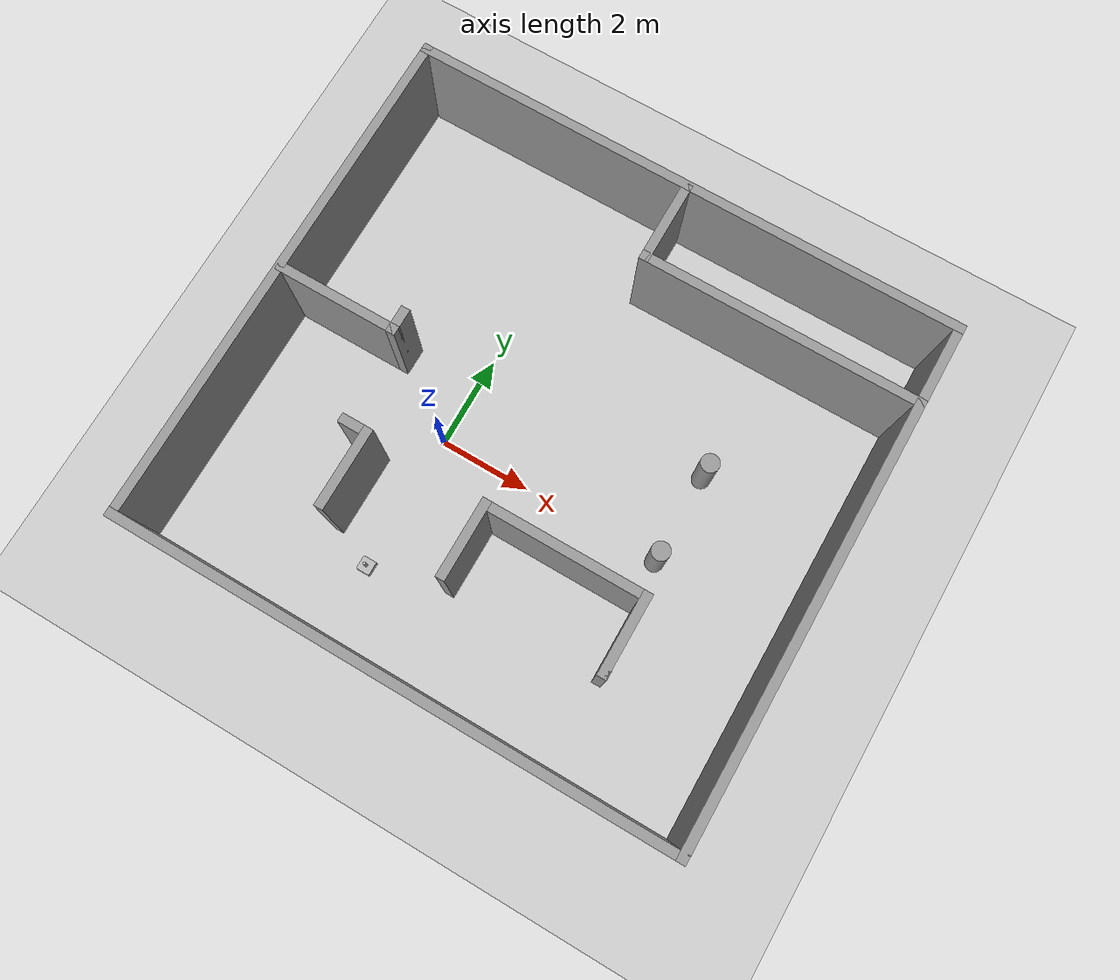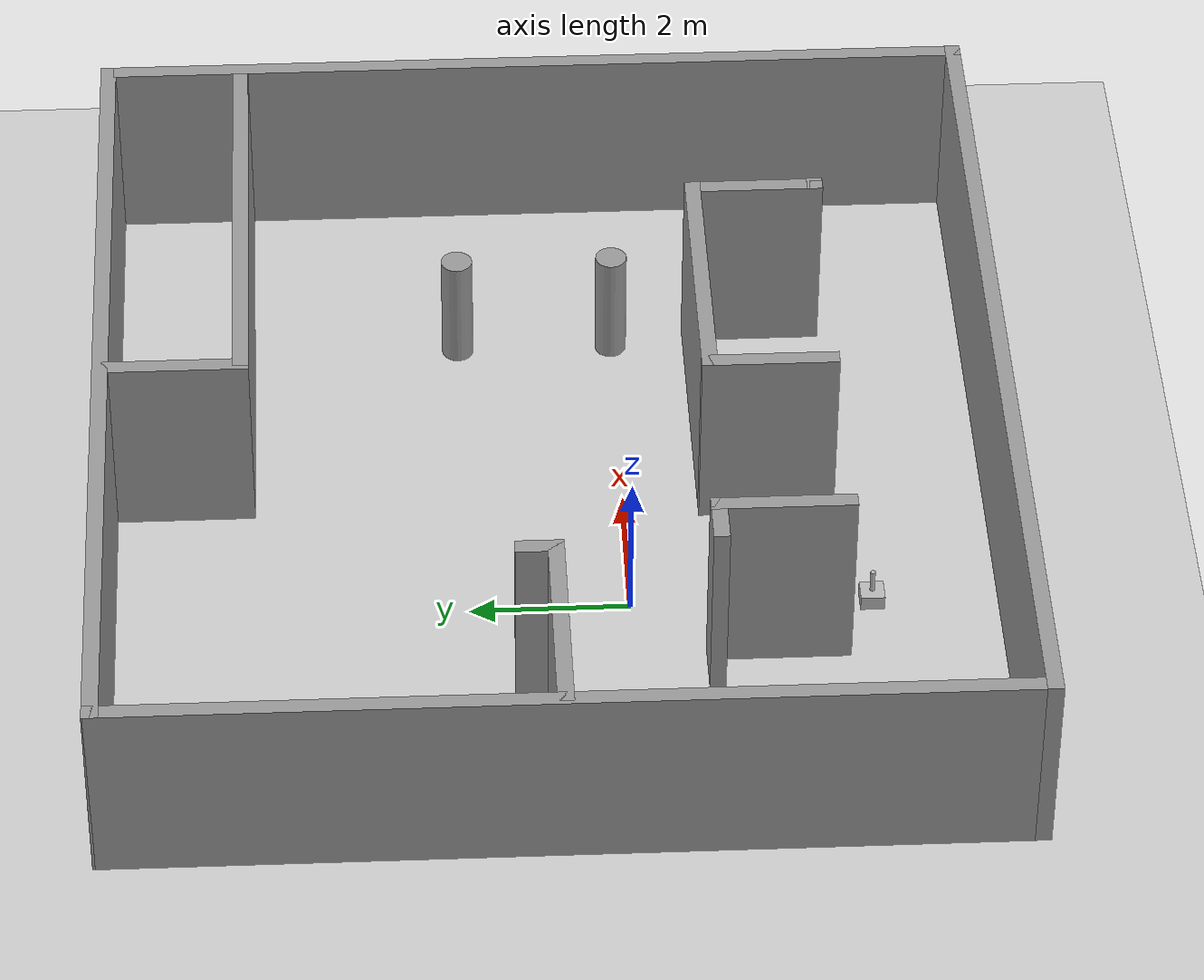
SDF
<?xml version="1.0" ?>
<sdf version="1.4">
  <world name="default">
    <!-- A global light source -->
    <include>
      <uri>model://sun</uri>
    </include>
    <!-- A ground plane -->
    <include>
      <uri>model://ground_plane</uri>
    </include>
    <!-- RoboCup SPL 2014 field -->

    <model name='MRL Arena'>
    <link name='Wall_18'>
      <collision name='Wall_18_Collision'>
        <geometry>
          <box>
            <size>1.87051 0.2 2.5</size>
          </box>
        </geometry>
        <pose>0 0 1.25 0 -0 0</pose>
      </collision>
      <visual name='Wall_18_Visual'>
        <pose>0 0 1.25 0 -0 0</pose>
        <geometry>
          <box>
            <size>1.87051 0.2 2.5</size>
          </box>
        </geometry>
        <material>
          <script>
            <uri>file://media/materials/scripts/gazebo.material</uri>
            <name>Gazebo/Grey</name>
          </script>
        </material>
      </visual>
      <velocity_decay>
        <linear>0</linear>
        <angular>0</angular>
      </velocity_decay>
      <pose>1.93872 5.58872 0 0 0 -1.5708</pose>
    </link>
    <link name='Wall_19'>
      <collision name='Wall_19_Collision'>
        <geometry>
          <box>
            <size>6.14623 0.2 2.5</size>
          </box>
        </geometry>
        <pose>0 0 1.25 0 -0 0</pose>
      </collision>
      <visual name='Wall_19_Visual'>
        <pose>0 0 1.25 0 -0 0</pose>
        <geometry>
          <box>
            <size>6.14623 0.2 2.5</size>
          </box>
        </geometry>
        <material>
          <script>
            <uri>file://media/materials/scripts/gazebo.material</uri>
            <name>Gazebo/Grey</name>
          </script>
        </material>
      </visual>
      <velocity_decay>
        <linear>0</linear>
        <angular>0</angular>
      </velocity_decay>
      <pose>4.91184 4.75346 0 0 -0 0</pose>
    </link>
    <link name='Wall_22'>
      <collision name='Wall_22_Collision'>
        <geometry>
          <box>
            <size>2.74064 0.2 2.5</size>
          </box>
        </geometry>
        <pose>0 0 1.25 0 -0 0</pose>
      </collision>
      <visual name='Wall_22_Visual'>
        <pose>0 0 1.25 0 -0 0</pose>
        <geometry>
          <box>
            <size>2.74064 0.2 2.5</size>
          </box>
        </geometry>
        <material>
          <script>
            <uri>file://media/materials/scripts/gazebo.material</uri>
            <name>Gazebo/Grey</name>
          </script>
        </material>
      </visual>
      <velocity_decay>
        <linear>0</linear>
        <angular>0</angular>
      </velocity_decay>
      <pose>-2.80806 0.998144 0 0 -0 0</pose>
    </link>
    <link name='Wall_23'>
      <collision name='Wall_23_Collision'>
        <geometry>
          <box>
            <size>0.593195 0.2 2.5</size>
          </box>
        </geometry>
        <pose>0 0 1.25 0 -0 0</pose>
      </collision>
      <visual name='Wall_23_Visual'>
        <pose>0 0 1.25 0 -0 0</pose>
        <geometry>
          <box>
            <size>0.593195 0.2 2.5</size>
          </box>
        </geometry>
        <material>
          <script>
            <uri>file://media/materials/scripts/gazebo.material</uri>
            <name>Gazebo/Grey</name>
          </script>
        </material>
      </visual>
      <velocity_decay>
        <linear>0</linear>
        <angular>0</angular>
      </velocity_decay>
      <pose>-1.53774 1.19474 0 0 -0 1.5708</pose>
    </link>
    <link name='Wall_29'>
      <collision name='Wall_29_Collision'>
        <geometry>
          <box>
            <size>0.683932 0.2 2.5</size>
          </box>
        </geometry>
        <pose>0 0 1.25 0 -0 0</pose>
      </collision>
      <visual name='Wall_29_Visual'>
        <pose>0 0 1.25 0 -0 0</pose>
        <geometry>
          <box>
            <size>0.683932 0.2 2.5</size>
          </box>
        </geometry>
        <material>
          <script>
            <uri>file://media/materials/scripts/gazebo.material</uri>
            <name>Gazebo/Grey</name>
          </script>
        </material>
      </visual>
      <velocity_decay>
        <linear>0</linear>
        <angular>0</angular>
      </velocity_decay>
      <pose>-1.12223 -0.988024 0 0 -0 0</pose>
    </link>
    <link name='Wall_3'>
      <collision name='Wall_3_Collision'>
        <geometry>
          <box>
            <size>11.19 0.2 2.5</size>
          </box>
        </geometry>
        <pose>0 0 1.25 0 -0 0</pose>
      </collision>
      <visual name='Wall_3_Visual'>
        <pose>0 0 1.25 0 -0 0</pose>
        <geometry>
          <box>
            <size>11.19 0.2 2.5</size>
          </box>
        </geometry>
        <material>
          <script>
            <uri>file://media/materials/scripts/gazebo.material</uri>
            <name>Gazebo/Grey</name>
          </script>
        </material>
      </visual>
      <velocity_decay>
        <linear>0</linear>
        <angular>0</angular>
      </velocity_decay>
      <pose>7.89 0.825009 0 0 0 -1.5708</pose>
    </link>
    <link name='Wall_30'>
      <collision name='Wall_30_Collision'>
        <geometry>
          <box>
            <size>1.77523 0.2 2.5</size>
          </box>
        </geometry>
        <pose>0 0 1.25 0 -0 0</pose>
      </collision>
      <visual name='Wall_30_Visual'>
        <pose>0 0 1.25 0 -0 0</pose>
        <geometry>
          <box>
            <size>1.77523 0.2 2.5</size>
          </box>
        </geometry>
        <material>
          <script>
            <uri>file://media/materials/scripts/gazebo.material</uri>
            <name>Gazebo/Grey</name>
          </script>
        </material>
      </visual>
      <velocity_decay>
        <linear>0</linear>
        <angular>0</angular>
      </velocity_decay>
      <pose>-0.880265 -1.77564 0 0 0 -1.5708</pose>
    </link>
    <link name='Wall_32'>
      <collision name='Wall_32_Collision'>
        <geometry>
          <box>
            <size>1.71229 0.2 2.5</size>
          </box>
        </geometry>
        <pose>0 0 1.25 0 -0 0</pose>
      </collision>
      <visual name='Wall_32_Visual'>
        <pose>0 0 1.25 0 -0 0</pose>
        <geometry>
          <box>
            <size>1.71229 0.2 2.5</size>
          </box>
        </geometry>
        <material>
          <script>
            <uri>file://media/materials/scripts/gazebo.material</uri>
            <name>Gazebo/Grey</name>
          </script>
        </material>
      </visual>
      <velocity_decay>
        <linear>0</linear>
        <angular>0</angular>
      </velocity_decay>
      <pose>1.75111 -1.80466 0 0 -0 1.5708</pose>
    </link>
    <link name='Wall_33'>
      <collision name='Wall_33_Collision'>
        <geometry>
          <box>
            <size>3.61777 0.2 2.5</size>
          </box>
        </geometry>
        <pose>0 0 1.25 0 -0 0</pose>
      </collision>
      <visual name='Wall_33_Visual'>
        <pose>0 0 1.25 0 -0 0</pose>
        <geometry>
          <box>
            <size>3.61777 0.2 2.5</size>
          </box>
        </geometry>
        <material>
          <script>
            <uri>file://media/materials/scripts/gazebo.material</uri>
            <name>Gazebo/Grey</name>
          </script>
        </material>
      </visual>
      <velocity_decay>
        <linear>0</linear>
        <angular>0</angular>
      </velocity_decay>
      <pose>3.46 -1.04852 0 0 -0 0</pose>
    </link>
    <link name='Wall_34'>
      <collision name='Wall_34_Collision'>
        <geometry>
          <box>
            <size>1.77278 0.2 2.5</size>
          </box>
        </geometry>
        <pose>0 0 1.25 0 -0 0</pose>
      </collision>
      <visual name='Wall_34_Visual'>
        <pose>0 0 1.25 0 -0 0</pose>
        <geometry>
          <box>
            <size>1.77278 0.2 2.5</size>
          </box>
        </geometry>
        <material>
          <script>
            <uri>file://media/materials/scripts/gazebo.material</uri>
            <name>Gazebo/Grey</name>
          </script>
        </material>
      </visual>
      <velocity_decay>
        <linear>0</linear>
        <angular>0</angular>
      </velocity_decay>
      <pose>5.16889 -1.83491 0 0 0 -1.5708</pose>
    </link>
    <link name='Wall_35'>
      <collision name='Wall_35_Collision'>
        <geometry>
          <box>
            <size>0.21 0.2 2.5</size>
          </box>
        </geometry>
        <pose>0 0 1.25 0 -0 0</pose>
      </collision>
      <visual name='Wall_35_Visual'>
        <pose>0 0 1.25 0 -0 0</pose>
        <geometry>
          <box>
            <size>0.21 0.2 2.5</size>
          </box>
        </geometry>
        <material>
          <script>
            <uri>file://media/materials/scripts/gazebo.material</uri>
            <name>Gazebo/Grey</name>
          </script>
        </material>
      </visual>
      <velocity_decay>
        <linear>0</linear>
        <angular>0</angular>
      </velocity_decay>
      <pose>5.17389 -2.62129 0 0 -0 0</pose>
    </link>
    <link name='Wall_4'>
      <collision name='Wall_4_Collision'>
        <geometry>
          <box>
            <size>12.2197 0.2 2.5</size>
          </box>
        </geometry>
        <pose>0 0 1.25 0 -0 0</pose>
      </collision>
      <visual name='Wall_4_Visual'>
        <pose>0 0 1.25 0 -0 0</pose>
        <geometry>
          <box>
            <size>12.2197 0.2 2.5</size>
          </box>
        </geometry>
        <material>
          <script>
            <uri>file://media/materials/scripts/gazebo.material</uri>
            <name>Gazebo/Grey</name>
          </script>
        </material>
      </visual>
      <velocity_decay>
        <linear>0</linear>
        <angular>0</angular>
      </velocity_decay>
      <pose>1.88016 -4.67 0 0 -0 3.14159</pose>
    </link>
    <link name='Wall_6'>
      <collision name='Wall_6_Collision'>
        <geometry>
          <box>
            <size>11.1573 0.2 2.5</size>
          </box>
        </geometry>
        <pose>0 0 1.25 0 -0 0</pose>
      </collision>
      <visual name='Wall_6_Visual'>
        <pose>0 0 1.25 0 -0 0</pose>
        <geometry>
          <box>
            <size>11.1573 0.2 2.5</size>
          </box>
        </geometry>
        <material>
          <script>
            <uri>file://media/materials/scripts/gazebo.material</uri>
            <name>Gazebo/Grey</name>
          </script>
        </material>
      </visual>
      <velocity_decay>
        <linear>0</linear>
        <angular>0</angular>
      </velocity_decay>
      <pose>-4.13 1.00831 0 0 -0 1.5708</pose>
    </link>
    <link name='Wall_7'>
      <collision name='Wall_7_Collision'>
        <geometry>
          <box>
            <size>12.22 0.2 2.5</size>
          </box>
        </geometry>
        <pose>0 0 1.25 0 -0 0</pose>
      </collision>
      <visual name='Wall_7_Visual'>
        <pose>0 0 1.25 0 -0 0</pose>
        <geometry>
          <box>
            <size>12.22 0.2 2.5</size>
          </box>
        </geometry>
        <material>
          <script>
            <uri>file://media/materials/scripts/gazebo.material</uri>
            <name>Gazebo/Grey</name>
          </script>
        </material>
      </visual>
      <velocity_decay>
        <linear>0</linear>
        <angular>0</angular>
      </velocity_decay>
      <pose>1.88 6.48847 0 0 -0 0.000254</pose>
    </link>
    <static>1</static>
  </model>

<!-- Add two pillars unit_cylinders inside the world-->

    <model name='unit_cylinder'>
      <pose frame=''>5 0 0.5 0 -0 0</pose>
      <link name='link'>
        <inertial>
          <mass>1</mass>
          <inertia>
            <ixx>0.145833</ixx>
            <ixy>0</ixy>
            <ixz>0</ixz>
            <iyy>0.145833</iyy>
            <iyz>0</iyz>
            <izz>0.125</izz>
          </inertia>
        </inertial>
        <collision name='collision'>
          <geometry>
            <cylinder>
              <radius>0.2</radius>
              <length>2</length>
            </cylinder>
          </geometry>
          <max_contacts>10</max_contacts>
        </collision>
        <visual name='visual'>
          <geometry>
            <cylinder>
              <radius>0.2</radius>
              <length>2</length>
            </cylinder>
          </geometry>
          <material>
            <script>
              <name>Gazebo/Grey</name>
              <uri>file://media/materials/scripts/gazebo.material</uri>
            </script>
          </material>
        </visual>
        <self_collide>0</self_collide>
        <kinematic>0</kinematic>
      </link>
    </model>

    <model name='unit_cylinder'>
      <pose frame=''>5 2 0.5 0 -0 0</pose>
      <link name='link'>
        <inertial>
          <mass>1</mass>
          <inertia>
            <ixx>0.145833</ixx>
            <ixy>0</ixy>
            <ixz>0</ixz>
            <iyy>0.145833</iyy>
            <iyz>0</iyz>
            <izz>0.125</izz>
          </inertia>
        </inertial>
        <collision name='collision'>
          <geometry>
            <cylinder>
              <radius>0.2</radius>
              <length>2</length>
            </cylinder>
          </geometry>
          <max_contacts>10</max_contacts>
        </collision>
        <visual name='visual'>
          <geometry>
            <cylinder>
              <radius>0.2</radius>
              <length>2</length>
            </cylinder>
          </geometry>
          <material>
            <script>
              <name>Gazebo/Grey</name>
              <uri>file://media/materials/scripts/gazebo.material</uri>
            </script>
          </material>
        </visual>
        <self_collide>0</self_collide>
        <kinematic>0</kinematic>
      </link>
    </model>

    <!-- Wireless receiver sensor model -->

     <model name="wirelessReceiver">
      <static>true</static>
      <pose>0 -3 0.025 0 0 0</pose>
      <link name="link">
        <inertial>
          <mass>0.1</mass>
        </inertial>
        <visual name="base">
          <geometry>
            <box>
              <size>.3 .3 .3</size>
            </box>
          </geometry>
        </visual>
        <visual name="antenna">
          <pose>0 0 .2 0 0 0</pose>
          <geometry>
            <cylinder>
              <radius>.03</radius>
              <length>.5</length>
            </cylinder>
          </geometry>
        </visual>
        <sensor name="wirelessReceiver" type="wireless_receiver">
          <pose>0 -3 .3 0 0 0</pose>
          <always_on>1</always_on>
          <update_rate>1</update_rate>
          <visualize>true</visualize>
          <transceiver>
            <min_frequency>2412.0</min_frequency>
            <max_frequency>2484.0</max_frequency>
            <power>14.5</power>
            <gain>2.5</gain>
            <sensitivity>-90.0</sensitivity> <!-- Minimum received signal power in dBm -->
          </transceiver>
        </sensor>
      </link>
      </model>

  </world>
</sdf>
